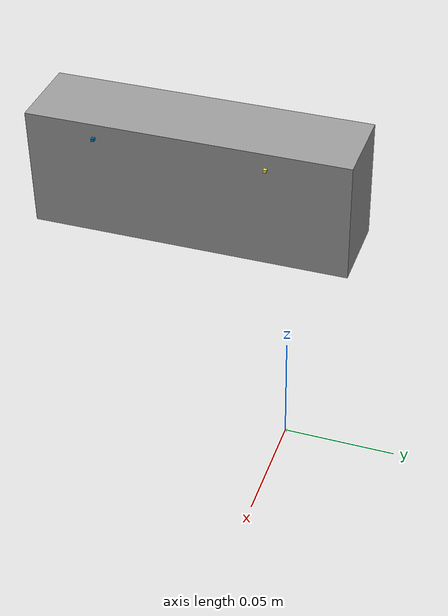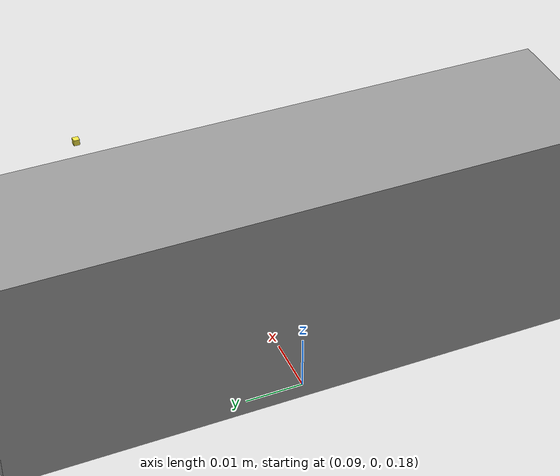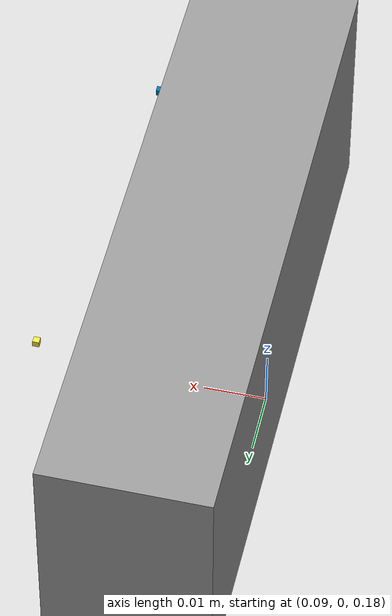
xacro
#Karina Ruiz
#Aylín Millan
#Olivia Navarrete

<?xml version="1.0"?>
<robot name="azure_kinect" xmlns:xacro="http://www.ros.org/wiki/xacro">

  <material name="black">
    <color rgba="0. 0. 0. 1" />
  </material>
  <material name="dark_grey">
    <color rgba="0.1 0.1 0.1 1" />
  </material>
  <material name="grey">
    <color rgba="0.6 0.6 0.6 1" />
  </material>
  <material name="white">
    <color rgba="0.9 0.9 0.9 1" />
  </material>

  <link name="base_link">
    <visual>
      <origin xyz="0 0 0" rpy="0 0 0"/>
      <geometry>
        <box size="0.001 0.001 0.001" />
      </geometry>
      <material name="white" /> </visual>
    <collision>
      <origin xyz="0 0 0" rpy="0 0 0"/>
      <geometry>
        <box size="0.001 0.001 0.001" />
      </geometry>
    </collision>
    <inertial>
      <mass value="0.0001"/> <origin xyz="0 0 0" rpy="0 0 0"/>
      <inertia ixx="0.0000001" ixy="0" ixz="0" iyy="0.0000001" iyz="0" izz="0.0000001"/>
    </inertial>
  </link>

  <joint name="base_link_to_camera_base" type="fixed">
    <parent link="base_link"/>
    <child link="camera_base"/>
    <origin xyz="0.1 0 0.2" rpy="0 0 0"/>
  </joint>

  <link name="camera_base">
    <visual>
      <origin xyz="0 0 0" rpy="0 0 0"/>
      <geometry>
        <box size="0.026 0.103 0.039" />
      </geometry>
      <material name="grey" />
    </visual>
    <collision>
      <origin xyz="0 0 0" rpy="0 0 0"/>
      <geometry>
        <box size="0.026 0.103 0.039" />
      </geometry>
    </collision>
    <inertial>
      <mass value="0.5"/>
      <origin xyz="0 0 0" rpy="0 0 0"/>
      <inertia ixx="0.001" ixy="0" ixz="0" iyy="0.001" iyz="0" izz="0.001"/>
    </inertial>
  </link>

  <link name="depth_camera_link">
    <visual>
      <origin xyz="0 0 0" rpy="0 0 0"/>
      <geometry>
        <box size="0.001 0.001 0.001" /> </geometry> </visual>
  </link>

  <joint name="camera_base_to_depth_camera" type="fixed">
    <parent link="camera_base" />
    <child link="depth_camera_link" />
    <origin xyz="0.012 0.0 0.015" rpy="0 0 0" />
  </joint>

  <link name="imu_link">
    <visual>
      <origin xyz="0 0 0" rpy="0 0 0"/>
      <geometry>
        <box size="0.001 0.001 0.001" /> </geometry> </visual>
  </link>

  <joint name="depth_camera_to_imu" type="fixed">
    <parent link="depth_camera_link" />
    <child link="imu_link" />
    <origin xyz="0.007 0.027 0.003" rpy="0 0 0" />
  </joint>

  <link name="rgb_camera_link">
    <visual>
      <origin xyz="0 0 0" rpy="0 0 0"/>
      <geometry>
        <box size="0.001 0.001 0.001" /> </geometry> </visual>
  </link>

  <joint name="depth_camera_to_rgb_camera" type="fixed">
    <parent link="depth_camera_link" />
    <child link="rgb_camera_link" />
    <origin xyz="0.002 -0.029 0.000" rpy="0 0 0" />
  </joint>

</robot>
